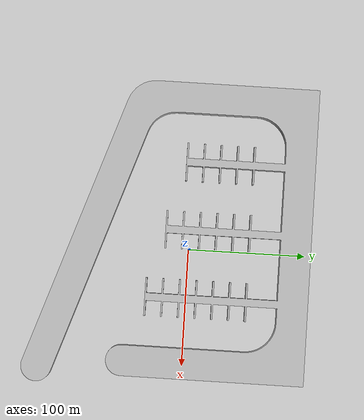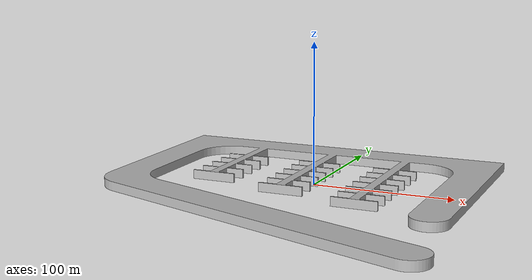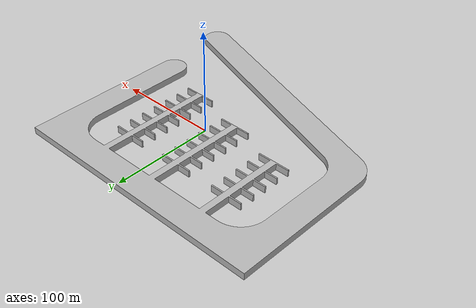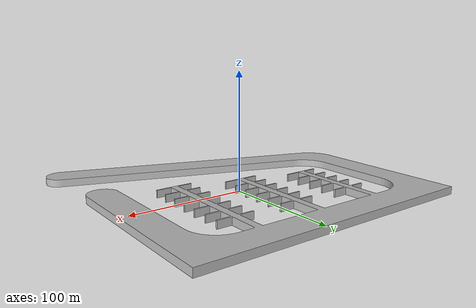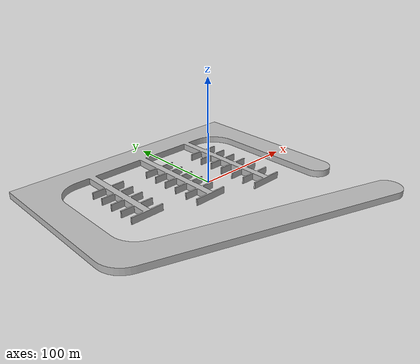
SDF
<?xml version="1.0" ?>
<sdf version="1.5">
  <model name="port">
    <static>true</static>
    <link name="link">
      <collision name="port_collision">
        <pose>0 0 0 0 0 0</pose>
        <geometry>
          <mesh>
	     <uri>model://port/meshes/port.stl</uri>
	     <scale> 15 15 15</scale>
          </mesh>
        </geometry>
      </collision>

      <visual name="port_visual">
        <cast_shadows>false</cast_shadows>
        <pose>0 0 0 0 0 0</pose>
        <geometry>
          <mesh>
	     <uri>model://port/meshes/port.dae</uri>
	     <scale> 15 15 15</scale>
          </mesh>
        </geometry>

      </visual>
    </link>
  </model>
</sdf>
